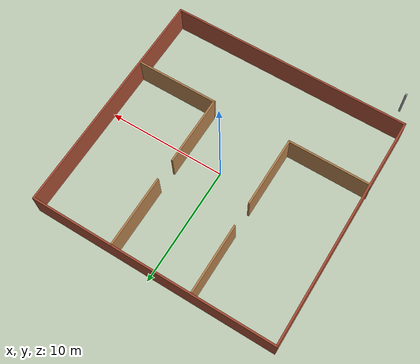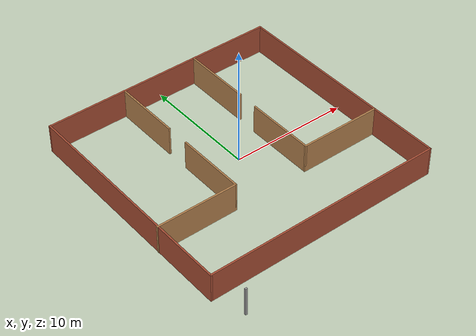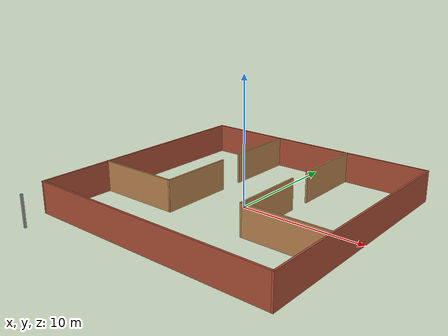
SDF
<?xml version='1.0'?>
<!-- Purpose: Gazebo model SDF for mobilerobot_world. -->
<sdf version='1.7'>
  <model name='mobilerobot_world'>
    <pose>-0.239385 -1.37585 0 0 -0 0</pose>
    <link name='Wall_12'>
      <collision name='Wall_12_Collision'>
        <geometry>
          <box>
            <size>20.5 0.15 2.5</size>
          </box>
        </geometry>
        <pose>0 0 1.25 0 -0 0</pose>
      </collision>
      <visual name='Wall_12_Visual'>
        <pose>0 0 1.25 0 -0 0</pose>
        <geometry>
          <box>
            <size>20.5 0.15 2.5</size>
          </box>
        </geometry>
        <material>
          <script>
            <uri>file://media/materials/scripts/gazebo.material</uri>
            <name>Gazebo/Bricks</name>
          </script>
          <ambient>1 1 1 1</ambient>
        </material>
        <meta>
          <layer>0</layer>
        </meta>
      </visual>
      <pose>0.023262 10.995 0 0 -0 0</pose>
    </link>
    <link name='Wall_14'>
      <collision name='Wall_14_Collision'>
        <geometry>
          <box>
            <size>19.75 0.15 2.5</size>
          </box>
        </geometry>
        <pose>0 0 1.25 0 -0 0</pose>
      </collision>
      <visual name='Wall_14_Visual'>
        <pose>0 0 1.25 0 -0 0</pose>
        <geometry>
          <box>
            <size>19.75 0.15 2.5</size>
          </box>
        </geometry>
        <material>
          <script>
            <uri>file://media/materials/scripts/gazebo.material</uri>
            <name>Gazebo/Bricks</name>
          </script>
          <ambient>1 1 1 1</ambient>
        </material>
        <meta>
          <layer>0</layer>
        </meta>
      </visual>
      <pose>10.1983 1.19498 0 0 -0 -1.5708</pose>
    </link>
    <link name='Wall_16'>
      <collision name='Wall_16_Collision'>
        <geometry>
          <box>
            <size>7 0.15 2.5</size>
          </box>
        </geometry>
        <pose>0 0 1.25 0 -0 0</pose>
      </collision>
      <visual name='Wall_16_Visual'>
        <pose>0 0 1.25 0 -0 0</pose>
        <geometry>
          <box>
            <size>7 0.15 2.5</size>
          </box>
        </geometry>
        <material>
          <script>
            <uri>file://media/materials/scripts/gazebo.material</uri>
            <name>Gazebo/Wood</name>
          </script>
          <ambient>1 1 1 1</ambient>
        </material>
        <meta>
          <layer>0</layer>
        </meta>
      </visual>
      <pose>-6.77326 -2.72957 0 0 -0 0</pose>
    </link>
    <link name='Wall_17'>
      <collision name='Wall_17_Collision'>
        <geometry>
          <box>
            <size>6 0.15 2.5</size>
          </box>
        </geometry>
        <pose>0 0 1.25 0 -0 0</pose>
      </collision>
      <visual name='Wall_17_Visual'>
        <pose>0 0 1.25 0 -0 0</pose>
        <geometry>
          <box>
            <size>6 0.15 2.5</size>
          </box>
        </geometry>
        <material>
          <script>
            <uri>file://media/materials/scripts/gazebo.material</uri>
            <name>Gazebo/Wood</name>
          </script>
          <ambient>1 1 1 1</ambient>
        </material>
        <meta>
          <layer>0</layer>
        </meta>
      </visual>
      <pose>-3.34826 0.19543 0 0 -0 1.5708</pose>
    </link>
    <link name='Wall_19'>
      <collision name='Wall_19_Collision'>
        <geometry>
          <box>
            <size>5.75 0.15 2.5</size>
          </box>
        </geometry>
        <pose>0 0 1.25 0 -0 0</pose>
      </collision>
      <visual name='Wall_19_Visual'>
        <pose>0 0 1.25 0 -0 0</pose>
        <geometry>
          <box>
            <size>5.75 0.15 2.5</size>
          </box>
        </geometry>
        <material>
          <script>
            <uri>file://media/materials/scripts/gazebo.material</uri>
            <name>Gazebo/Wood</name>
          </script>
          <ambient>1 1 1 1</ambient>
        </material>
        <meta>
          <layer>0</layer>
        </meta>
      </visual>
      <pose>-3.35925 8.02602 0 0 -0 1.5708</pose>
    </link>
    <link name='Wall_23'>
      <collision name='Wall_23_Collision'>
        <geometry>
          <box>
            <size>7 0.15 2.5</size>
          </box>
        </geometry>
        <pose>0 0 1.25 0 -0 0</pose>
      </collision>
      <visual name='Wall_23_Visual'>
        <pose>0 0 1.25 0 -0 0</pose>
        <geometry>
          <box>
            <size>7 0.15 2.5</size>
          </box>
        </geometry>
        <material>
          <script>
            <uri>file://media/materials/scripts/gazebo.material</uri>
            <name>Gazebo/Wood</name>
          </script>
          <ambient>1 1 1 1</ambient>
        </material>
        <meta>
          <layer>0</layer>
        </meta>
      </visual>
      <pose>6.70769 -2.68305 0 0 -0 3.14159</pose>
    </link>
    <link name='Wall_24'>
      <collision name='Wall_24_Collision'>
        <geometry>
          <box>
            <size>6 0.15 2.5</size>
          </box>
        </geometry>
        <pose>0 0 1.25 0 -0 0</pose>
      </collision>
      <visual name='Wall_24_Visual'>
        <pose>0 0 1.25 0 -0 0</pose>
        <geometry>
          <box>
            <size>6 0.15 2.5</size>
          </box>
        </geometry>
        <material>
          <script>
            <uri>file://media/materials/scripts/gazebo.material</uri>
            <name>Gazebo/Wood</name>
          </script>
          <ambient>1 1 1 1</ambient>
        </material>
        <meta>
          <layer>0</layer>
        </meta>
      </visual>
      <pose>3.28269 0.241954 0 0 -0 1.5708</pose>
    </link>
    <link name='Wall_28'>
      <collision name='Wall_28_Collision'>
        <geometry>
          <box>
            <size>6 0.15 2.5</size>
          </box>
        </geometry>
        <pose>0 0 1.25 0 -0 0</pose>
      </collision>
      <visual name='Wall_28_Visual'>
        <pose>0 0 1.25 0 -0 0</pose>
        <geometry>
          <box>
            <size>6 0.15 2.5</size>
          </box>
        </geometry>
        <material>
          <script>
            <uri>file://media/materials/scripts/gazebo.material</uri>
            <name>Gazebo/Wood</name>
          </script>
          <ambient>1 1 1 1</ambient>
        </material>
        <meta>
          <layer>0</layer>
        </meta>
      </visual>
      <pose>3.3402 8.01145 0 0 -0 1.5708</pose>
    </link>
    <link name='Wall_4'>
      <collision name='Wall_4_Collision'>
        <geometry>
          <box>
            <size>0.16 0.15 2.5</size>
          </box>
        </geometry>
        <pose>0 0 1.25 0 -0 0</pose>
      </collision>
      <visual name='Wall_4_Visual'>
        <pose>0 0 1.25 0 -0 0</pose>
        <geometry>
          <box>
            <size>0.16 0.15 2.5</size>
          </box>
        </geometry>
        <material>
          <script>
            <uri>file://media/materials/scripts/gazebo.material</uri>
            <name>Gazebo/Grey</name>
          </script>
          <ambient>1 1 1 1</ambient>
        </material>
        <meta>
          <layer>0</layer>
        </meta>
      </visual>
      <pose>-9.09947 -10.995 0 0 -0 0</pose>
    </link>
    <link name='Wall_7'>
      <collision name='Wall_7_Collision'>
        <geometry>
          <box>
            <size>19.75 0.15 2.5</size>
          </box>
        </geometry>
        <pose>0 0 1.25 0 -0 0</pose>
      </collision>
      <visual name='Wall_7_Visual'>
        <pose>0 0 1.25 0 -0 0</pose>
        <geometry>
          <box>
            <size>19.75 0.15 2.5</size>
          </box>
        </geometry>
        <material>
          <script>
            <uri>file://media/materials/scripts/gazebo.material</uri>
            <name>Gazebo/Bricks</name>
          </script>
          <ambient>1 1 1 1</ambient>
        </material>
        <meta>
          <layer>0</layer>
        </meta>
      </visual>
      <pose>-10.1517 1.19498 0 0 -0 -1.5708</pose>
    </link>
    <link name='Wall_8'>
      <collision name='Wall_8_Collision'>
        <geometry>
          <box>
            <size>20.3896 0.15 2.5</size>
          </box>
        </geometry>
        <pose>0 0 1.25 0 -0 0</pose>
      </collision>
      <visual name='Wall_8_Visual'>
        <pose>0 0 1.25 0 -0 0</pose>
        <geometry>
          <box>
            <size>20.3896 0.15 2.5</size>
          </box>
        </geometry>
        <material>
          <script>
            <uri>file://media/materials/scripts/gazebo.material</uri>
            <name>Gazebo/Bricks</name>
          </script>
          <ambient>1 1 1 1</ambient>
        </material>
        <meta>
          <layer>0</layer>
        </meta>
      </visual>
      <pose>0.014571 -8.60501 0 0 -0 0</pose>
    </link>
    <static>1</static>
  </model>
</sdf>
